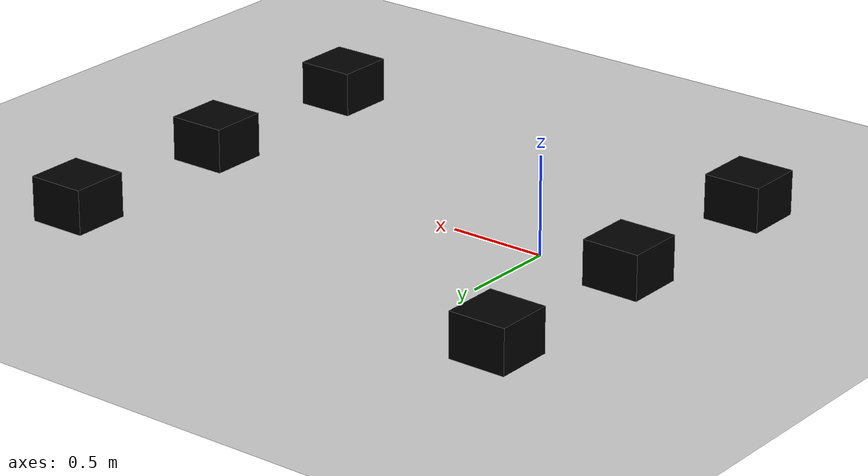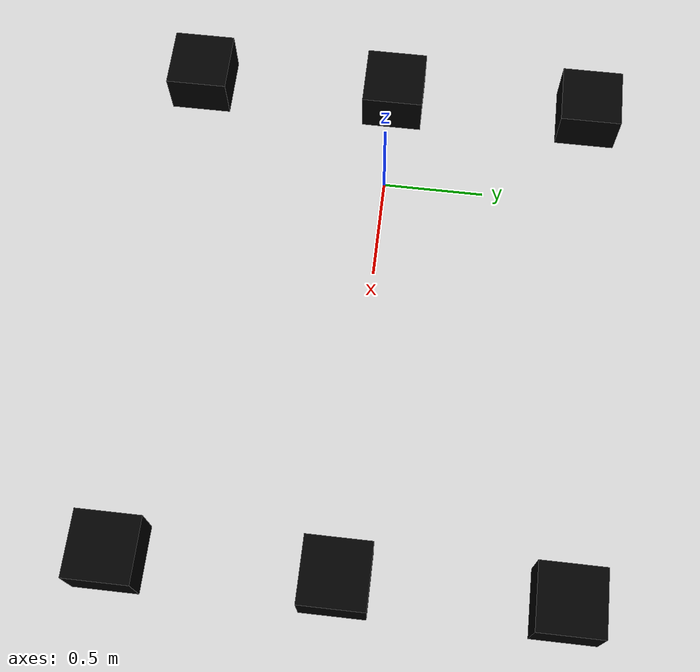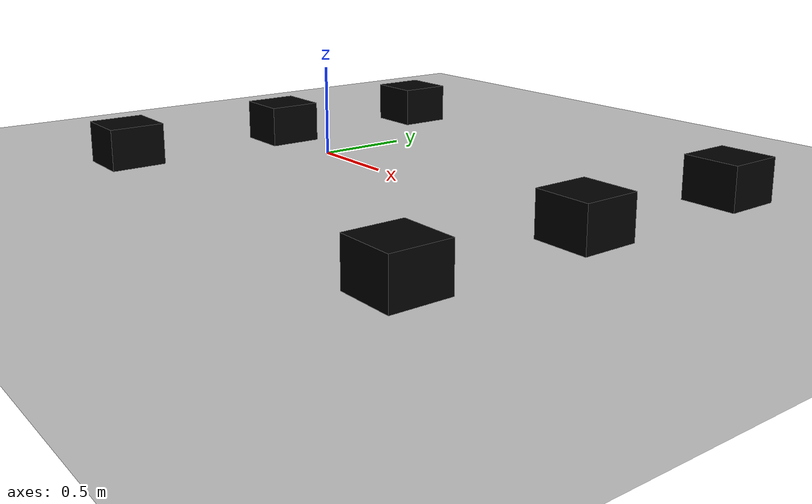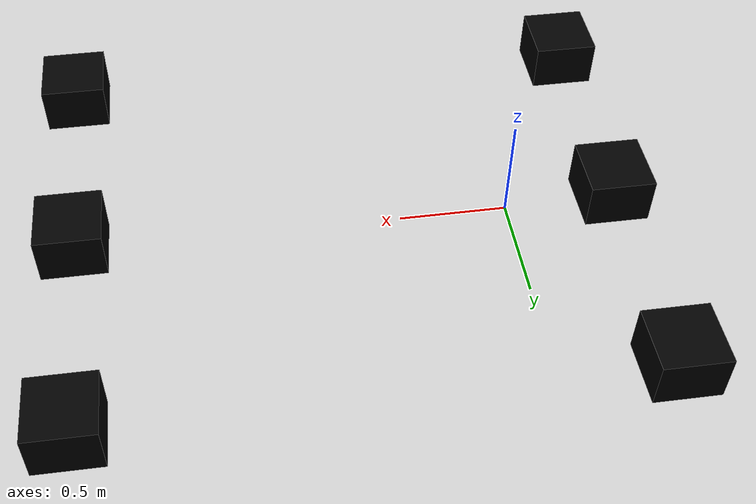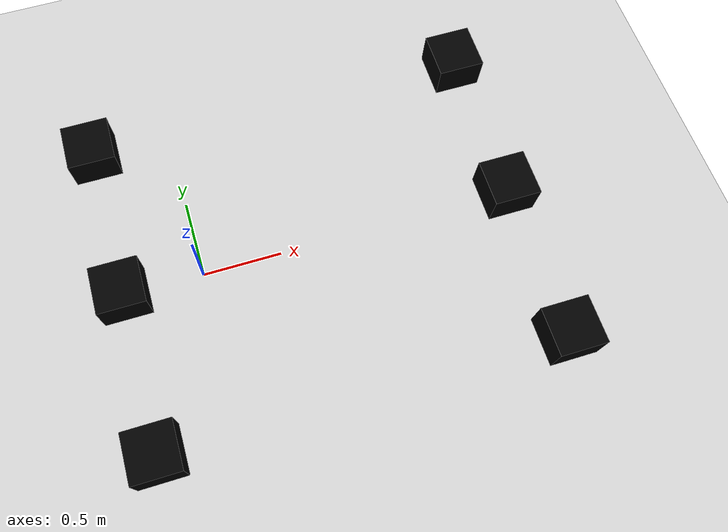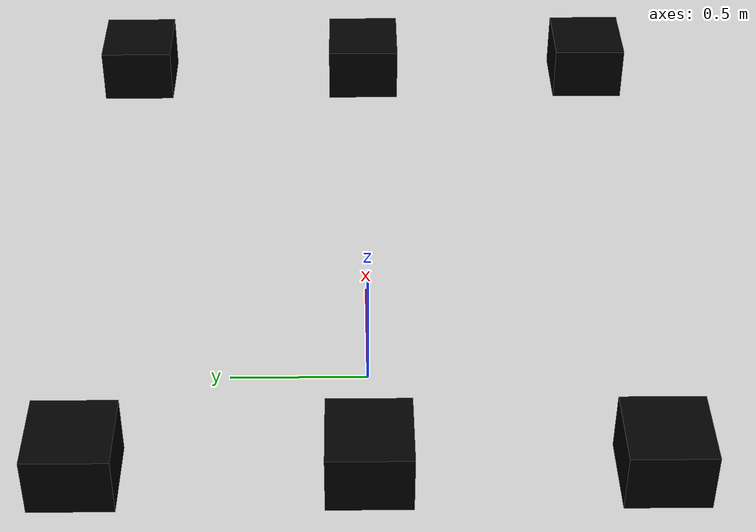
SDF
<sdf version="1.6">
 <world name="default">
  <physics name="1ms" type="ignored">
   <max_step_size>0.001</max_step_size>
   <real_time_factor>1.0</real_time_factor>
  </physics>
  <plugin filename="gz-sim-physics-system" name="gz::sim::systems::Physics"/>
  <plugin filename="gz-sim-sensors-system" name="gz::sim::systems::Sensors">
   <render_engine>ogre2</render_engine>
  </plugin>
  <plugin filename="gz-sim-user-commands-system" name="gz::sim::systems::UserCommands"/>
  <plugin filename="gz-sim-scene-broadcaster-system" name="gz::sim::systems::SceneBroadcaster"/>
  <include><uri>https://fuel.gazebosim.org/1.0/OpenRobotics/models/Sun</uri></include>
  <include><uri>https://fuel.gazebosim.org/1.0/OpenRobotics/models/Ground%20Plane</uri></include>
  <model name="black_cube11">
   <include><uri>model://cube_30cm_black</uri></include>
   <pose>-0.5 0 0.075 0 0 0</pose>
  </model>
  <model name="black_cube12">
   <include><uri>model://cube_30cm_black</uri></include>
   <pose>-0.5 1.0 0.075 0 0 0</pose>
  </model>
  <model name="black_cube13">
   <include><uri>model://cube_30cm_black</uri></include>
   <pose>-0.5 -1.0 0.075 0 0 0</pose>
  </model>
  <model name="black_cube21">
   <include><uri>model://cube_30cm_black</uri></include>
   <pose>2.0 0 0.075 0 0 0</pose>
  </model>
  <model name="black_cube22">
   <include><uri>model://cube_30cm_black</uri></include>
   <pose>2.0 1.0 0.075 0 0 0</pose>
  </model>
  <model name="black_cube23">
   <include><uri>model://cube_30cm_black</uri></include>
   <pose>2.0 -1.0 0.075 0 0 0</pose>
  </model>
 </world>
</sdf>

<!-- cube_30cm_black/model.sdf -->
<sdf version="1.6">
    <model name="cube_30cm_black">
      <link name="cube_black_link">
        <inertial>
          <inertia>
            <ixx>1</ixx>
            <ixy>0</ixy>
            <ixz>0</ixz>
            <iyy>1</iyy>
            <iyz>0</iyz>
            <izz>1</izz>
          </inertia>
          <mass>1.0</mass>
        </inertial>
        <collision name="cube_black_collision">
          <geometry>
            <box>
              <size>0.3 0.3 0.3</size>
            </box>
          </geometry>
        </collision>
        <visual name="cube_black_visual">
          <material>
            <ambient>0 0 0 1</ambient>
            <diffuse>0 0 0 1</diffuse>
            <specular>0 0 0 0</specular>
            <emissive>0 0 0 1</emissive>
          </material>
          <geometry>
            <box>
              <size>0.3 0.3 0.3</size>
            </box>
          </geometry>
        </visual>
      </link>
    </model>
</sdf>
